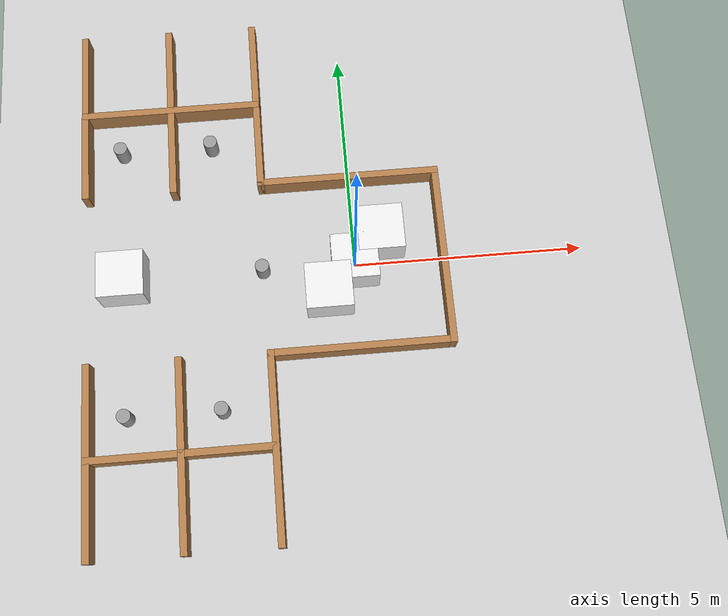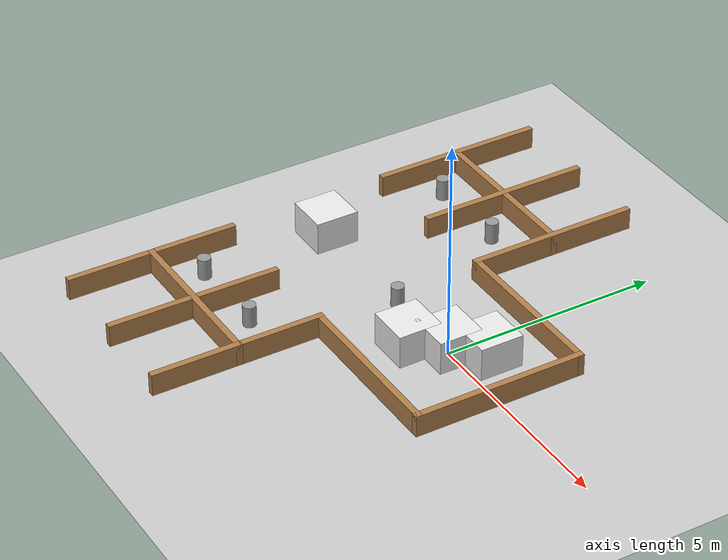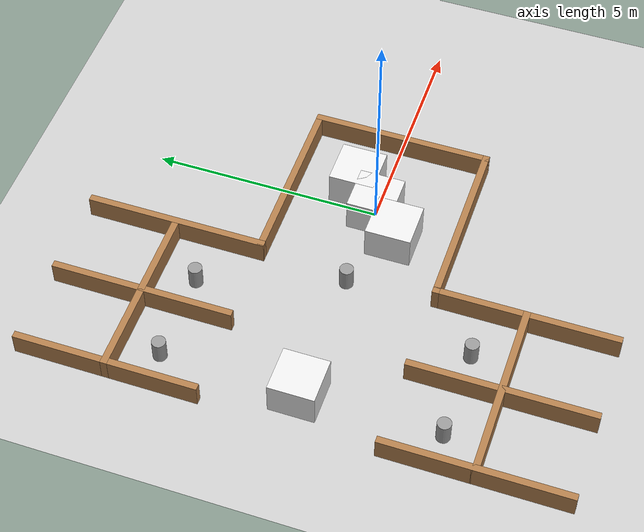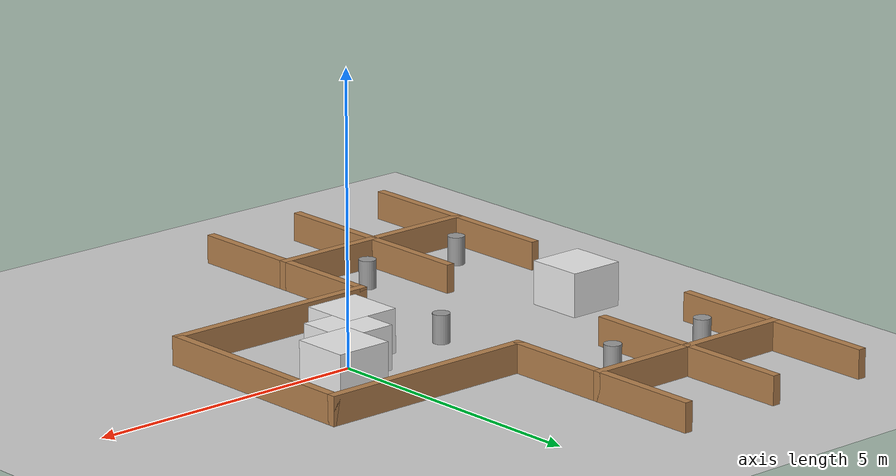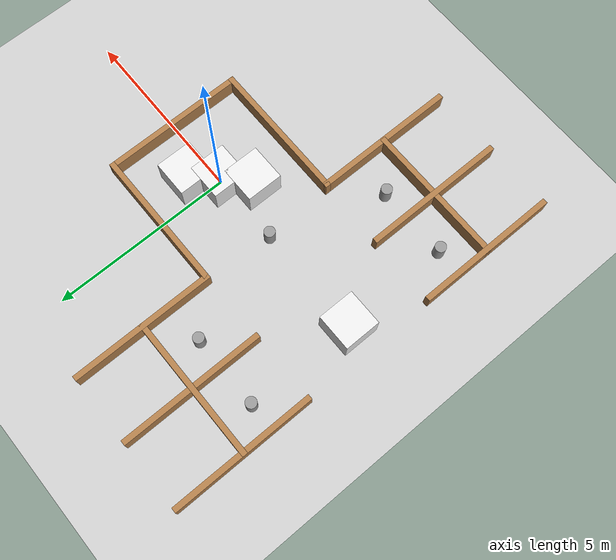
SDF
<sdf version='1.6'>
  <world name='default'>
    <!-- A global light source -->
    <include>
      <uri>model://sun</uri>
    </include>

    <!-- A ground plane -->
    <include>
      <uri>model://ground_plane</uri>
    </include>

    <physics type="ode">
      <real_time_update_rate>1000.0</real_time_update_rate>
      <max_step_size>0.001</max_step_size>
      <real_time_factor>1</real_time_factor>
      <ode>
        <solver>
          <type>quick</type>
          <iters>150</iters>
          <precon_iters>0</precon_iters>
          <sor>1.400000</sor>
          <use_dynamic_moi_rescaling>1</use_dynamic_moi_rescaling>
        </solver>
        <constraints>
          <cfm>0.00001</cfm>
          <erp>0.2</erp>
          <contact_max_correcting_vel>2000.000000</contact_max_correcting_vel>
          <contact_surface_layer>0.01000</contact_surface_layer>
        </constraints>
      </ode>
    </physics>

    <!-- Load world -->
    <include>
      <uri>model://turtlebot3_square</uri>
    </include>

     <model name='obstacle'>
      <pose frame=''>0 0 0 0 -0 0</pose>
      <link name='obstacle'>
        <collision name='obstacle_1'>
          <pose>0 0 0.25 0 0 0</pose>
          <geometry>
            <box>
              <radius>0.15</radius>
              <length>0.5</length>
            </box>
          </geometry>
          <max_contacts>10</max_contacts>
          <surface>
            <bounce/>
            <friction>
              <ode/>
            </friction>
            <contact>
              <ode/>
            </contact>
          </surface>
        </collision>

        <visual name='obstacle_1'>
          <pose>0 0 0.25 0 0 0</pose>
          <geometry>
            <box>
              <radius>0.15</radius>
              <length>0.5</length>
            </box>
          </geometry>
          <material>
            <script>
              <uri>file://media/materials/scripts/gazebo.material</uri>
              <name>Gazebo/White</name>
            </script>
          </material>
        </visual>

        <collision name='obstacle_2'>
          <pose>-0.6 -0.6 0.25 0 0 0</pose>
          <geometry>
            <box>
              <radius>0.15</radius>
              <length>0.5</length>
            </box>
          </geometry>
          <max_contacts>10</max_contacts>
          <surface>
            <bounce/>
            <friction>
              <ode/>
            </friction>
            <contact>
              <ode/>
            </contact>
          </surface>
        </collision>

        <visual name='obstacle_2'>
          <pose>-0.6 -0.6 0.25 0 0 0</pose>
          <geometry>
            <box>
              <radius>0.15</radius>
              <length>0.5</length>
            </box>
          </geometry>
          <material>
            <script>
              <uri>file://media/materials/scripts/gazebo.material</uri>
              <name>Gazebo/White</name>
            </script>
          </material>
        </visual>

        <collision name='obstacle_3'>
          <pose>0.6 0.6 0.25 0 0 0</pose>
          <geometry>
            <box>
              <radius>0.15</radius>
              <length>0.5</length>
            </box>
          </geometry>
          <max_contacts>10</max_contacts>
          <surface>
            <bounce/>
            <friction>
              <ode/>
            </friction>
            <contact>
              <ode/>
            </contact>
          </surface>
        </collision>

        <visual name='obstacle_3'>
          <pose>0.6 0.6 0.25 0 0 0</pose>
          <geometry>
            <box>
              <radius>0.15</radius>
              <length>0.5</length>
            </box>
          </geometry>
          <material>
            <script>
              <uri>file://media/materials/scripts/gazebo.material</uri>
              <name>Gazebo/White</name>
            </script>
          </material>
        </visual>

        <collision name='obstacle_4'>
          <pose>-5.0 0 0.25 0 0 0</pose>
          <geometry>
            <box>
              <radius>0.15</radius>
              <length>0.5</length>
            </box>
          </geometry>
          <max_contacts>10</max_contacts>
          <surface>
            <bounce/>
            <friction>
              <ode/>
            </friction>
            <contact>
              <ode/>
            </contact>
          </surface>
        </collision>

        <visual name='obstacle_4'>
          <pose>-5.0 0 0.25 0 0 0</pose>
          <geometry>
            <box>
              <radius>0.15</radius>
              <length>0.5</length>
            </box>
          </geometry>
          <material>
            <script>
              <uri>file://media/materials/scripts/gazebo.material</uri>
              <name>Gazebo/White</name>
            </script>
          </material>
        </visual>

        <collision name='obstacle_5'>
          <pose>-2.0 0 0.25 0 0 0</pose>
          <geometry>
            <cylinder>
              <radius>0.15</radius>
              <length>0.5</length>
            </cylinder>
          </geometry>
          <max_contacts>10</max_contacts>
          <surface>
            <bounce/>
            <friction>
              <ode/>
            </friction>
            <contact>
              <ode/>
            </contact>
          </surface>
        </collision>

        <visual name='obstacle_5'>
          <pose>-2.0 0 0.25 0 0 0</pose>
          <geometry>
            <cylinder>
              <radius>0.15</radius>
              <length>0.5</length>
            </cylinder>
          </geometry>
          <material>
            <script>
              <uri>file://media/materials/scripts/gazebo.material</uri>
              <name>Gazebo/Grey</name>
            </script>
          </material>
        </visual>

        <collision name='obstacle_6'>
          <pose>-3.0 3.0 0.25 0 0 0</pose>
          <geometry>
            <cylinder>
              <radius>0.15</radius>
              <length>0.5</length>
            </cylinder>
          </geometry>
          <max_contacts>10</max_contacts>
          <surface>
            <bounce/>
            <friction>
              <ode/>
            </friction>
            <contact>
              <ode/>
            </contact>
          </surface>
        </collision>

        <visual name='obstacle_6'>
          <pose>-3.0 3.0 0.25 0 0 0</pose>
          <geometry>
            <cylinder>
              <radius>0.15</radius>
              <length>0.5</length>
            </cylinder>
          </geometry>
          <material>
            <script>
              <uri>file://media/materials/scripts/gazebo.material</uri>
              <name>Gazebo/Grey</name>
            </script>
          </material>
        </visual>

        <collision name='obstacle_7'>
          <pose>-3.0 -3.0 0.25 0 0 0</pose>
          <geometry>
            <cylinder>
              <radius>0.15</radius>
              <length>0.5</length>
            </cylinder>
          </geometry>
          <max_contacts>10</max_contacts>
          <surface>
            <bounce/>
            <friction>
              <ode/>
            </friction>
            <contact>
              <ode/>
            </contact>
          </surface>
        </collision>

        <visual name='obstacle_7'>
          <pose>-3.0 -3.0 0.25 0 0 0</pose>
          <geometry>
            <cylinder>
              <radius>0.15</radius>
              <length>0.5</length>
            </cylinder>
          </geometry>
          <material>
            <script>
              <uri>file://media/materials/scripts/gazebo.material</uri>
              <name>Gazebo/Grey</name>
            </script>
          </material>
        </visual>

        <collision name='obstacle_8'>
          <pose>-5.0 3.0 0.25 0 0 0</pose>
          <geometry>
            <cylinder>
              <radius>0.15</radius>
              <length>0.5</length>
            </cylinder>
          </geometry>
          <max_contacts>10</max_contacts>
          <surface>
            <bounce/>
            <friction>
              <ode/>
            </friction>
            <contact>
              <ode/>
            </contact>
          </surface>
        </collision>

        <visual name='obstacle_8'>
          <pose>-5.0 3.0 0.25 0 0 0</pose>
          <geometry>
            <cylinder>
              <radius>0.15</radius>
              <length>0.5</length>
            </cylinder>
          </geometry>
          <material>
            <script>
              <uri>file://media/materials/scripts/gazebo.material</uri>
              <name>Gazebo/Grey</name>
            </script>
          </material>
        </visual>

        <collision name='obstacle_9'>
          <pose>-5.0 -3.0 0.25 0 0 0</pose>
          <geometry>
            <cylinder>
              <radius>0.15</radius>
              <length>0.5</length>
            </cylinder>
          </geometry>
          <max_contacts>10</max_contacts>
          <surface>
            <bounce/>
            <friction>
              <ode/>
            </friction>
            <contact>
              <ode/>
            </contact>
          </surface>
        </collision>

        <visual name='obstacle_9'>
          <pose>-5.0 -3.0 0.25 0 0 0</pose>
          <geometry>
            <cylinder>
              <radius>0.15</radius>
              <length>0.5</length>
            </cylinder>
          </geometry>
          <material>
            <script>
              <uri>file://media/materials/scripts/gazebo.material</uri>
              <name>Gazebo/Grey</name>
            </script>
          </material>
        </visual>
      </link>
      <static>1</static>
    </model>

    <scene>
      <ambient>0.4 0.4 0.4 1</ambient>
      <background>0.7 0.7 0.7 1</background>
      <shadows>true</shadows>
    </scene>

    <gui fullscreen='0'>
      <camera name='user_camera'>
        <pose>0.0 0.0 17.0 0 1.5708 0</pose>
        <view_controller>orbit</view_controller>
      </camera>
    </gui>
  </world>
</sdf>

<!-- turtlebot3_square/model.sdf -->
<sdf version='1.6'>
  <model name='turtlebot3_square'>
    <pose frame=''>0 0 0 0 -0 0</pose>
    <link name='Wall_0'>
      <collision name='Wall_0_Collision'>
        <geometry>
          <box>
            <size>4 0.15 0.5</size>
          </box>
        </geometry>
        <pose frame=''>0 0 0.25 0 -0 0</pose>
      </collision>
      <visual name='Wall_0_Visual'>
        <pose frame=''>0 0 0.25 0 -0 0</pose>
        <geometry>
          <box>
            <size>4 0.15 0.5</size>
          </box>
        </geometry>
        <material>
          <script>
            <uri>file://media/materials/scripts/gazebo.material</uri>
            <name>Gazebo/Wood</name>
          </script>
          <ambient>1 1 1 1</ambient>
        </material>
      </visual>
      <pose frame=''>0 1.925 0 0 -0 0</pose>
    </link>
    <link name='Wall_2'>
      <collision name='Wall_2_Collision'>
        <geometry>
          <box>
            <size>4 0.15 0.5</size>
          </box>
        </geometry>
        <pose frame=''>0 0 0.25 0 -0 0</pose>
      </collision>
      <visual name='Wall_2_Visual'>
        <pose frame=''>0 0 0.25 0 -0 0</pose>
        <geometry>
          <box>
            <size>4 0.15 0.5</size>
          </box>
        </geometry>
        <material>
          <script>
            <uri>file://media/materials/scripts/gazebo.material</uri>
            <name>Gazebo/Wood</name>
          </script>
          <ambient>1 1 1 1</ambient>
        </material>
      </visual>
      <pose frame=''>-1.925 -3.85 0 0 0 -1.5708</pose>
    </link>
    <link name='Wall_3'>
      <collision name='Wall_3_Collision'>
        <geometry>
          <box>
            <size>4 0.15 0.5</size>
          </box>
        </geometry>
        <pose frame=''>0 0 0.25 0 -0 0</pose>
      </collision>
      <visual name='Wall_3_Visual'>
        <pose frame=''>0 0 0.25 0 -0 0</pose>
        <geometry>
          <box>
            <size>4 0.15 0.5</size>
          </box>
        </geometry>
        <material>
          <script>
            <uri>file://media/materials/scripts/gazebo.material</uri>
            <name>Gazebo/Wood</name>
          </script>
          <ambient>1 1 1 1</ambient>
        </material>
      </visual>
      <pose frame=''>0 -1.925 0 0 -0 0</pose>
    </link>
    <link name='Wall_4'>
      <collision name='Wall_4_Collision'>
        <geometry>
          <box>
            <size>4 0.15 0.5</size>
          </box>
        </geometry>
        <pose frame=''>0 0 0.25 0 -0 0</pose>
      </collision>
      <visual name='Wall_4_Visual'>
        <pose frame=''>0 0 0.25 0 -0 0</pose>
        <geometry>
          <box>
            <size>4 0.15 0.5</size>
          </box>
        </geometry>
        <material>
          <script>
            <uri>file://media/materials/scripts/gazebo.material</uri>
            <name>Gazebo/Wood</name>
          </script>
          <ambient>1 1 1 1</ambient>
        </material>
      </visual>
      <pose frame=''>1.925 0 0 0 -0 1.5708</pose>
    </link>
    <link name='Wall_5'>
      <collision name='Wall_5_Collision'>
        <geometry>
          <box>
            <size>4 0.15 0.5</size>
          </box>
        </geometry>
        <pose frame=''>0 0 0.25 0 -0 0</pose>
      </collision>
      <visual name='Wall_5_Visual'>
        <pose frame=''>0 0 0.25 0 -0 0</pose>
        <geometry>
          <box>
            <size>4 0.15 0.5</size>
          </box>
        </geometry>
        <material>
          <script>
            <uri>file://media/materials/scripts/gazebo.material</uri>
            <name>Gazebo/Wood</name>
          </script>
          <ambient>1 1 1 1</ambient>
        </material>
      </visual>
      <pose frame=''>-1.925 3.85 0 0 -0 -1.5708</pose>
    </link>
    <link name='Wall_6'>
      <collision name='Wall_6_Collision'>
        <geometry>
          <box>
            <size>4 0.15 0.5</size>
          </box>
        </geometry>
        <pose frame=''>0 0 0.25 0 -0 0</pose>
      </collision>
      <visual name='Wall_6_Visual'>
        <pose frame=''>0 0 0.25 0 -0 0</pose>
        <geometry>
          <box>
            <size>4 0.15 0.5</size>
          </box>
        </geometry>
        <material>
          <script>
            <uri>file://media/materials/scripts/gazebo.material</uri>
            <name>Gazebo/Wood</name>
          </script>
          <ambient>1 1 1 1</ambient>
        </material>
      </visual>
      <pose frame=''>-3.85 3.85 0 0 -0 0</pose>
    </link>
    <link name='Wall_7'>
      <collision name='Wall_7_Collision'>
        <geometry>
          <box>
            <size>4 0.15 0.5</size>
          </box>
        </geometry>
        <pose frame=''>0 0 0.25 0 -0 0</pose>
      </collision>
      <visual name='Wall_7_Visual'>
        <pose frame=''>0 0 0.25 0 -0 0</pose>
        <geometry>
          <box>
            <size>4 0.15 0.5</size>
          </box>
        </geometry>
        <material>
          <script>
            <uri>file://media/materials/scripts/gazebo.material</uri>
            <name>Gazebo/Wood</name>
          </script>
          <ambient>1 1 1 1</ambient>
        </material>
      </visual>
      <pose frame=''>-3.85 -3.85 0 0 -0 0</pose>
    </link>
    <link name='Wall_8'>
      <collision name='Wall_8_Collision'>
        <geometry>
          <box>
            <size>4 0.15 0.5</size>
          </box>
        </geometry>
        <pose frame=''>0 0 0.25 0 -0 0</pose>
      </collision>
      <visual name='Wall_8_Visual'>
        <pose frame=''>0 0 0.25 0 -0 0</pose>
        <geometry>
          <box>
            <size>4 0.15 0.5</size>
          </box>
        </geometry>
        <material>
          <script>
            <uri>file://media/materials/scripts/gazebo.material</uri>
            <name>Gazebo/Wood</name>
          </script>
          <ambient>1 1 1 1</ambient>
        </material>
      </visual>
      <pose frame=''>-3.85 -3.85 0 0 0 -1.5708</pose>
    </link>
    <link name='Wall_9'>
      <collision name='Wall_9_Collision'>
        <geometry>
          <box>
            <size>4 0.15 0.5</size>
          </box>
        </geometry>
        <pose frame=''>0 0 0.25 0 -0 0</pose>
      </collision>
      <visual name='Wall_9_Visual'>
        <pose frame=''>0 0 0.25 0 -0 0</pose>
        <geometry>
          <box>
            <size>4 0.15 0.5</size>
          </box>
        </geometry>
        <material>
          <script>
            <uri>file://media/materials/scripts/gazebo.material</uri>
            <name>Gazebo/Wood</name>
          </script>
          <ambient>1 1 1 1</ambient>
        </material>
      </visual>
      <pose frame=''>-3.85 3.85 0 0 -0 -1.5708</pose>
    </link>
    <link name='Wall_10'>
      <collision name='Wall_10_Collision'>
        <geometry>
          <box>
            <size>4 0.15 0.5</size>
          </box>
        </geometry>
        <pose frame=''>0 0 0.25 0 -0 0</pose>
      </collision>
      <visual name='Wall_10_Visual'>
        <pose frame=''>0 0 0.25 0 -0 0</pose>
        <geometry>
          <box>
            <size>4 0.15 0.5</size>
          </box>
        </geometry>
        <material>
          <script>
            <uri>file://media/materials/scripts/gazebo.material</uri>
            <name>Gazebo/Wood</name>
          </script>
          <ambient>1 1 1 1</ambient>
        </material>
      </visual>
      <pose frame=''>-5.775 -3.85 0 0 0 -1.5708</pose>
    </link>
    <link name='Wall_11'>
      <collision name='Wall_11_Collision'>
        <geometry>
          <box>
            <size>4 0.15 0.5</size>
          </box>
        </geometry>
        <pose frame=''>0 0 0.25 0 -0 0</pose>
      </collision>
      <visual name='Wall_11_Visual'>
        <pose frame=''>0 0 0.25 0 -0 0</pose>
        <geometry>
          <box>
            <size>4 0.15 0.5</size>
          </box>
        </geometry>
        <material>
          <script>
            <uri>file://media/materials/scripts/gazebo.material</uri>
            <name>Gazebo/Wood</name>
          </script>
          <ambient>1 1 1 1</ambient>
        </material>
      </visual>
      <pose frame=''>-5.775 3.85 0 0 -0 -1.5708</pose>
    </link>
    <static>1</static>
  </model>
</sdf>
